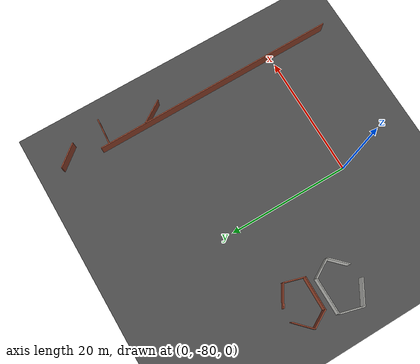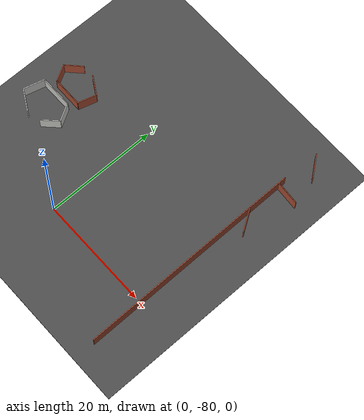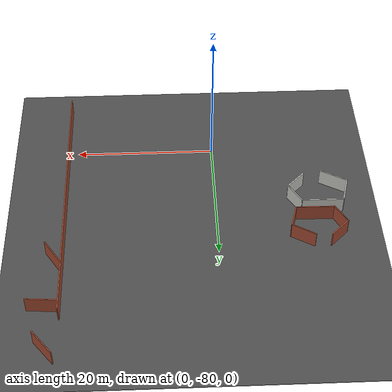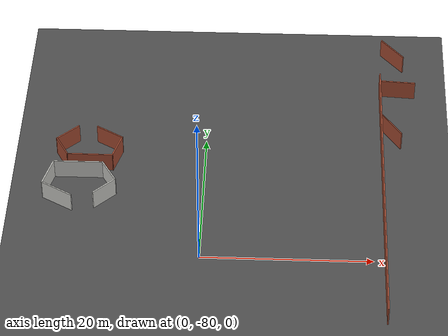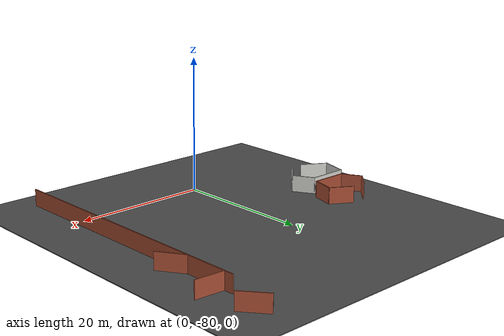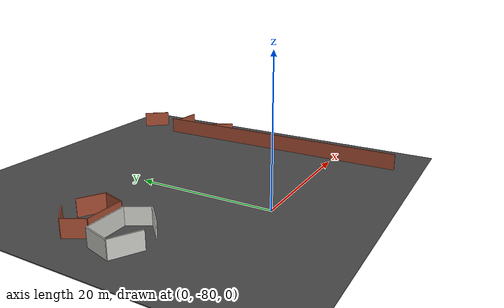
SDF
<sdf version="1.6">
 <world name="default">
  <model name="ground_plane">
   <static>1</static>
   <link name="link">
    <collision name="collision">
     <geometry><plane><normal>0 0 1</normal><size>200 200</size></plane></geometry>
     <surface><friction><ode><mu>100</mu><mu2>50</mu2></ode></friction></surface>
    </collision>
    <visual name="visual">
     <cast_shadows>0</cast_shadows>
     <geometry><plane><normal>0 0 1</normal><size>200 200</size></plane></geometry>
     <material>
      <script><uri>file://media/materials/scripts/gazebo.material</uri><name>Gazebo/Grey</name></script>
     </material>
    </visual>
   </link>
  </model>
  <model name="asphalt_plane">
   <static>1</static>
   <link name="link">
    <collision name="collision"><geometry><box><size>200 200 0.1</size></box></geometry></collision>
    <visual name="visual">
     <cast_shadows>0</cast_shadows>
     <geometry><box><size>200 200 0.1</size></box></geometry>
     <material>
      <script>
       <uri>model://asphalt_plane/materials/scripts</uri>
       <uri>model://asphalt_plane/materials/textures</uri>
       <name>vrc/asphalt</name>
      </script>
     </material>
    </visual>
   </link>
  </model>
  <model name="brick_longwall_clone_clone_3_clone_1">
   <pose>21.2782 -69.4847 0 0 0 -1.56602</pose>
   <link name="Wall_0">
    <collision name="Wall_0_Collision">
     <geometry><box><size>40.5 0.15 2.5</size></box></geometry>
     <pose>0 0 1.25 0 -0 0</pose>
    </collision>
    <visual name="Wall_0_Visual">
     <pose>0 0 1.25 0 -0 0</pose>
     <geometry><box><size>40.5 0.15 2.5</size></box></geometry>
     <material>
      <script><uri>file://media/materials/scripts/gazebo.material</uri><name>Gazebo/Bricks</name></script>
      <ambient>1 1 1 1</ambient>
     </material>
    </visual>
    <pose>1e-06 0 0 0 -0 0</pose>
   </link>
   <static>1</static>
  </model>
  <model name="brick_worlds_1_clone_0_clone_clone_0_clone_clone_clone_6">
   <pose>22.4006 -58.7454 0 0 0 -2.56269</pose>
   <link name="Wall_0">
    <collision name="Wall_0_Collision">
     <geometry><box><size>4.25 0.15 2.5</size></box></geometry>
     <pose>0 0 1.25 0 -0 0</pose>
    </collision>
    <visual name="Wall_0_Visual">
     <pose>0 0 1.25 0 -0 0</pose>
     <geometry><box><size>4.25 0.15 2.5</size></box></geometry>
     <material>
      <script><uri>file://media/materials/scripts/gazebo.material</uri><name>Gazebo/Bricks</name></script>
      <ambient>1 1 1 1</ambient>
     </material>
    </visual>
    <pose>0 -0 0 0 -0 1.5708</pose>
   </link>
   <static>1</static>
  </model>
  <model name="brick_worlds_0_clone_clone_clone_0">
   <pose>23.3769 -50.8024 0 0 -0 1.49697</pose>
   <link name="Wall_0">
    <collision name="Wall_0_Collision">
     <geometry><box><size>4.25 0.15 2.5</size></box></geometry>
     <pose>0 0 1.25 0 -0 0</pose>
    </collision>
    <visual name="Wall_0_Visual">
     <pose>0 0 1.25 0 -0 0</pose>
     <geometry><box><size>4.25 0.15 2.5</size></box></geometry>
     <material>
      <script><uri>file://media/materials/scripts/gazebo.material</uri><name>Gazebo/Bricks</name></script>
      <ambient>1 1 1 1</ambient>
     </material>
    </visual>
    <pose>0 -0 0 0 -0 1.5708</pose>
   </link>
   <static>1</static>
  </model>
  <model name="brick_worlds_2_clone_clone_0_clone_2_clone">
   <pose>22.814 -44.242 0 0 -0 0.67691</pose>
   <link name="Wall_0">
    <collision name="Wall_0_Collision">
     <geometry><box><size>4.25 0.15 2.5</size></box></geometry>
     <pose>0 0 1.25 0 -0 0</pose>
    </collision>
    <visual name="Wall_0_Visual">
     <pose>0 0 1.25 0 -0 0</pose>
     <geometry><box><size>4.25 0.15 2.5</size></box></geometry>
     <material>
      <script><uri>file://media/materials/scripts/gazebo.material</uri><name>Gazebo/Bricks</name></script>
      <ambient>1 1 1 1</ambient>
     </material>
    </visual>
    <pose>0 -0 0 0 -0 1.5708</pose>
   </link>
   <static>1</static>
  </model>
  <model name="concrete_room_0">
   <pose>-14.6311 -69.7484 0 0 -0 0</pose>
   <link name="Wall_54">
    <collision name="Wall_54_Collision">
     <geometry><box><size>4.25 0.15 2.5</size></box></geometry>
     <pose>0 0 1.25 0 -0 0</pose>
    </collision>
    <visual name="Wall_54_Visual">
     <pose>0 0 1.25 0 -0 0</pose>
     <geometry><box><size>4.25 0.15 2.5</size></box></geometry>
     <material>
      <script><uri>file://media/materials/scripts/gazebo.material</uri><name>Gazebo/CeilingTiled</name></script>
      <ambient>1 1 1 1</ambient>
     </material>
     <meta><layer>0</layer></meta>
    </visual>
    <pose>-2.48718 -1.85941 0 0 -0 2.61799</pose>
   </link>
   <link name="Wall_55">
    <collision name="Wall_55_Collision">
     <geometry><box><size>4 0.15 2.5</size></box></geometry>
     <pose>0 0 1.25 0 -0 0</pose>
    </collision>
    <visual name="Wall_55_Visual">
     <pose>0 0 1.25 0 -0 0</pose>
     <geometry><box><size>4 0.15 2.5</size></box></geometry>
     <material>
      <script><uri>file://media/materials/scripts/gazebo.material</uri><name>Gazebo/CeilingTiled</name></script>
      <ambient>1 1 1 1</ambient>
     </material>
     <meta><layer>0</layer></meta>
    </visual>
    <pose>-3.76431 1.025 0 0 -0 1.309</pose>
   </link>
   <link name="Wall_56">
    <collision name="Wall_56_Collision">
     <geometry><box><size>6 0.15 2.5</size></box></geometry>
     <pose>0 0 1.25 0 -0 0</pose>
    </collision>
    <visual name="Wall_56_Visual">
     <pose>0 0 1.25 0 -0 0</pose>
     <geometry><box><size>6 0.15 2.5</size></box></geometry>
     <material>
      <script><uri>file://media/materials/scripts/gazebo.material</uri><name>Gazebo/CeilingTiled</name></script>
      <ambient>1 1 1 1</ambient>
     </material>
     <meta><layer>0</layer></meta>
    </visual>
    <pose>-0.34108 2.88441 0 0 -0 0</pose>
   </link>
   <link name="Wall_57">
    <collision name="Wall_57_Collision">
     <geometry><box><size>3.5 0.15 2.5</size></box></geometry>
     <pose>0 0 1.25 0 -0 0</pose>
    </collision>
    <visual name="Wall_57_Visual">
     <pose>0 0 1.25 0 -0 0</pose>
     <geometry><box><size>3.5 0.15 2.5</size></box></geometry>
     <material>
      <script><uri>file://media/materials/scripts/gazebo.material</uri><name>Gazebo/CeilingTiled</name></script>
      <ambient>1 1 1 1</ambient>
     </material>
     <meta><layer>0</layer></meta>
    </visual>
    <pose>3.42142 1.43382 0 0 0 -1.0472</pose>
   </link>
   <link name="Wall_58">
    <collision name="Wall_58_Collision">
     <geometry><box><size>3.5 0.15 2.5</size></box></geometry>
     <pose>0 0 1.25 0 -0 0</pose>
    </collision>
    <visual name="Wall_58_Visual">
     <pose>0 0 1.25 0 -0 0</pose>
     <geometry><box><size>3.5 0.15 2.5</size></box></geometry>
     <material>
      <script><uri>file://media/materials/scripts/gazebo.material</uri><name>Gazebo/CeilingTiled</name></script>
      <ambient>1 1 1 1</ambient>
     </material>
     <meta><layer>0</layer></meta>
    </visual>
    <pose>3.07452 -1.20118 0 0 0 -2.35619</pose>
   </link>
   <static>1</static>
  </model>
  <model name="brick_room1_clone_clone_clone_0">
   <pose>-14 -63 0 0 -0 3.12342</pose>
   <link name="Wall_11">
    <collision name="Wall_11_Collision">
     <geometry><box><size>3.25 0.15 2.5</size></box></geometry>
     <pose>0 0 1.25 0 -0 0</pose>
    </collision>
    <visual name="Wall_11_Visual">
     <pose>0 0 1.25 0 -0 0</pose>
     <geometry><box><size>3.25 0.15 2.5</size></box></geometry>
     <material>
      <script><uri>file://media/materials/scripts/gazebo.material</uri><name>Gazebo/Bricks</name></script>
      <ambient>1 1 1 1</ambient>
     </material>
    </visual>
    <pose>3.12132 1.19483 0 0 0 -1.0472</pose>
   </link>
   <link name="Wall_12">
    <collision name="Wall_12_Collision">
     <geometry><box><size>3.5 0.15 2.5</size></box></geometry>
     <pose>0 0 1.25 0 -0 0</pose>
    </collision>
    <visual name="Wall_12_Visual">
     <pose>0 0 1.25 0 -0 0</pose>
     <geometry><box><size>3.5 0.15 2.5</size></box></geometry>
     <material>
      <script><uri>file://media/materials/scripts/gazebo.material</uri><name>Gazebo/Bricks</name></script>
      <ambient>1 1 1 1</ambient>
     </material>
    </visual>
    <pose>2.71192 -1.33192 0 0 0 -2.35619</pose>
   </link>
   <link name="Wall_7">
    <collision name="Wall_7_Collision">
     <geometry><box><size>5.52935 0.15 2.5</size></box></geometry>
     <pose>0 0 1.25 0 -0 0</pose>
    </collision>
    <visual name="Wall_7_Visual">
     <pose>0 0 1.25 0 -0 0</pose>
     <geometry><box><size>5.52935 0.15 2.5</size></box></geometry>
     <material>
      <script><uri>file://media/materials/scripts/gazebo.material</uri><name>Gazebo/Bricks</name></script>
      <ambient>1 1 1 1</ambient>
     </material>
    </visual>
    <pose>-0.343285 2.51793 0 0 0 -3.13444</pose>
   </link>
   <link name="Wall_8">
    <collision name="Wall_8_Collision">
     <geometry><box><size>3.5 0.15 2.5</size></box></geometry>
     <pose>0 0 1.25 0 -0 0</pose>
    </collision>
    <visual name="Wall_8_Visual">
     <pose>0 0 1.25 0 -0 0</pose>
     <geometry><box><size>3.5 0.15 2.5</size></box></geometry>
     <material>
      <script><uri>file://media/materials/scripts/gazebo.material</uri><name>Gazebo/Bricks</name></script>
      <ambient>1 1 1 1</ambient>
     </material>
    </visual>
    <pose>-3.46641 0.880761 0 0 0 -1.8326</pose>
   </link>
   <link name="Wall_9">
    <collision name="Wall_9_Collision">
     <geometry><box><size>3.75 0.15 2.5</size></box></geometry>
     <pose>0 0 1.25 0 -0 0</pose>
    </collision>
    <visual name="Wall_9_Visual">
     <pose>0 0 1.25 0 -0 0</pose>
     <geometry><box><size>3.75 0.15 2.5</size></box></geometry>
     <material>
      <script><uri>file://media/materials/scripts/gazebo.material</uri><name>Gazebo/Bricks</name></script>
      <ambient>1 1 1 1</ambient>
     </material>
    </visual>
    <pose>-2.34109 -1.63716 0 0 0 -0.523599</pose>
   </link>
   <static>1</static>
  </model>
 </world>
</sdf>
